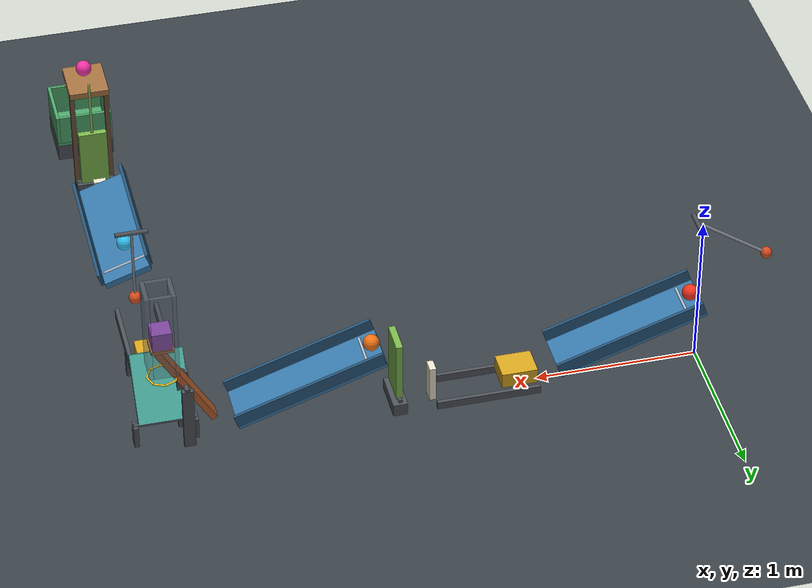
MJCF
<mujoco model="passive_chain">
  <compiler angle="degree" autolimits="true" inertiafromgeom="true"/>
  <option timestep="0.002" gravity="0 0 -9.81" integrator="implicitfast" cone="elliptic" iterations="100" tolerance="1e-10"/>
  <size nconmax="1000" njmax="4000"/>
  <visual>
    <global azimuth="135" elevation="-25"/>
    <map znear="0.01" zfar="50"/>
  </visual>

  <!-- All initial joint velocities are zero. -->
  <!-- Contact damping ratio 0.6901 approximates restitution 0.05. -->
  <!-- Sliding, torsional, and rolling friction are specified explicitly. -->

  <worldbody>
    <light name="main_light" pos="1 -1 5" dir="0 0 -1" diffuse="0.8 0.8 0.8"/>
    <light name="fill_light" pos="-2 -3 3" dir="1 1 -1" diffuse="0.4 0.4 0.4"/>
    <camera name="overview" pos="6 -7 5" xyaxes="0.8 0.6 0 -0.3 0.4 0.866"/>

    <geom name="floor" type="plane" size="20 20 0.1" rgba="0.22 0.25 0.28 1" friction="0.68 0.005 0.001" solref="0.01 0.6901" solimp="0.95 0.99 0.001"/>

    <!-- Pendulum1: initial rigid-body orientation is 55 degrees left. -->
    <body name="pendulum1" pos="0.04 0 1.03" euler="0 55 0">
      <joint name="pendulum1_hinge" type="hinge" axis="0 -1 0" damping="0.04" range="0 140"/>
      <geom name="pendulum1_rod" type="capsule" fromto="0 0 0 0 0 -0.515" size="0.009" mass="0.08" rgba="0.55 0.58 0.62 1" friction="0.68 0.005 0.001" solref="0.01 0.6901"/>
      <geom name="pendulum1_bob" type="sphere" pos="0 0 -0.55" size="0.035" mass="0.32" rgba="0.85 0.3 0.12 1" friction="0.68 0.005 0.001" solref="0.01 0.6901"/>
    </body>

    <body name="pendulum1_mount" pos="0.04 0 1.03">
      <geom name="pendulum1_mount_axle" type="cylinder" size="0.015 0.07" euler="90 0 0" rgba="0.3 0.32 0.35 1" contype="0" conaffinity="0"/>
    </body>

    <body name="ball1" pos="0.054099 0 0.493543">
      <freejoint name="ball1_free"/>
      <geom name="ball1_sphere" type="sphere" size="0.05" mass="0.20" rgba="0.95 0.2 0.12 1" friction="0.68 0.005 0.001" solref="0.01 0.6901" solimp="0.95 0.99 0.001"/>
    </body>

    <!-- Ramp surface endpoints: (0,0,0.459290) and (0.898243,0,0.15). -->
    <body name="ramp1" pos="0.442610 0 0.285734" euler="0 19 0">
      <geom name="ramp1_deck" type="box" size="0.475 0.15 0.02" rgba="0.22 0.48 0.68 1" friction="0.68 0.005 0.001" solref="0.01 0.6901"/>
      <geom name="ramp1_rail_left" type="box" pos="0 0.16 0.06" size="0.475 0.01 0.04" rgba="0.16 0.34 0.48 1" friction="0.68 0.005 0.001" solref="0.01 0.6901"/>
      <geom name="ramp1_rail_right" type="box" pos="0 -0.16 0.06" size="0.475 0.01 0.04" rgba="0.16 0.34 0.48 1" friction="0.68 0.005 0.001" solref="0.01 0.6901"/>
      <geom name="ramp1_release_lip" type="capsule" fromto="-0.370 -0.13 0.02 -0.370 0.13 0.02" size="0.008" rgba="0.7 0.75 0.8 1" friction="0.68 0.005 0.001" solref="0.01 0.6901"/>
    </body>

    <body name="cart1" pos="1.128243 0 0.10">
      <joint name="cart1_slide" type="slide" axis="1 0 0" damping="0.20" range="0 0.40" solreflimit="0.006 1"/>
      <geom name="cart1_chassis" type="box" size="0.11 0.09 0.05" mass="0.50" rgba="0.85 0.65 0.12 1" friction="0.68 0.005 0.001" solref="0.01 0.6901"/>
    </body>

    <body name="cart1_track" pos="1.328243 0 0.025">
      <geom name="cart1_track_left" type="box" pos="0 0.12 0" size="0.32 0.012 0.025" rgba="0.3 0.32 0.35 1" friction="0.68 0.005 0.001" solref="0.01 0.6901"/>
      <geom name="cart1_track_right" type="box" pos="0 -0.12 0" size="0.32 0.012 0.025" rgba="0.3 0.32 0.35 1" friction="0.68 0.005 0.001" solref="0.01 0.6901"/>
    </body>

    <body name="domino1" pos="1.655243 0 0.12">
      <freejoint name="domino1_free"/>
      <geom name="domino1_block" type="box" size="0.02 0.04 0.12" mass="0.25" rgba="0.92 0.9 0.8 1" friction="0.68 0.005 0.001" solref="0.01 0.6901"/>
    </body>

    <body name="flap1" pos="1.875243 0 0.105">
      <joint name="flap1_hinge" type="hinge" axis="0 1 0" damping="0.04" range="0 65" solreflimit="0.006 1"/>
      <geom name="flap1_panel" type="box" pos="0 0 0.20" size="0.02 0.10 0.20" mass="0.30" rgba="0.48 0.72 0.3 1" friction="0.68 0.005 0.001" solref="0.01 0.6901"/>
    </body>

    <body name="flap1_mount" pos="1.875243 0 0.105">
      <geom name="flap1_mount_axle" type="cylinder" size="0.012 0.13" euler="90 0 0" rgba="0.3 0.32 0.35 1" contype="0" conaffinity="0"/>
      <geom name="flap1_mount_base" type="box" pos="0 0 -0.065" size="0.045 0.13 0.04" rgba="0.3 0.32 0.35 1" friction="0.68 0.005 0.001" solref="0.01 0.6901"/>
    </body>

    <body name="ball2" pos="2.024099 0 0.493543">
      <freejoint name="ball2_free"/>
      <geom name="ball2_sphere" type="sphere" size="0.05" mass="0.20" rgba="0.95 0.45 0.08 1" friction="0.68 0.005 0.001" solref="0.01 0.6901"/>
    </body>

    <body name="ramp2" pos="2.412610 0 0.285734" euler="0 19 0">
      <geom name="ramp2_deck" type="box" size="0.475 0.15 0.02" rgba="0.22 0.48 0.68 1" friction="0.68 0.005 0.001" solref="0.01 0.6901"/>
      <geom name="ramp2_rail_left" type="box" pos="0 0.16 0.06" size="0.475 0.01 0.04" rgba="0.16 0.34 0.48 1" friction="0.68 0.005 0.001" solref="0.01 0.6901"/>
      <geom name="ramp2_rail_right" type="box" pos="0 -0.16 0.06" size="0.475 0.01 0.04" rgba="0.16 0.34 0.48 1" friction="0.68 0.005 0.001" solref="0.01 0.6901"/>
      <geom name="ramp2_release_lip" type="capsule" fromto="-0.370 -0.13 0.02 -0.370 0.13 0.02" size="0.008" rgba="0.7 0.75 0.8 1" friction="0.68 0.005 0.001" solref="0.01 0.6901"/>
    </body>

    <!-- Inclined starting beam raises the block station above the floor. -->
    <!-- The passive spring approximately balances its initial loaded torque. -->
    <body name="seesaw1" pos="3.147986 0 0.421458" euler="0 -60 0">
      <joint name="seesaw1_hinge" type="hinge" axis="0 -1 0" damping="0.04" stiffness="0.8" springref="35.93" range="0 40" solreflimit="0.006 1"/>
      <geom name="seesaw1_beam" type="box" size="0.325 0.05 0.02" mass="0.50" rgba="0.72 0.38 0.18 1" friction="0.68 0.005 0.001" solref="0.01 0.6901"/>
      <geom name="seesaw1_block_pad" type="box" pos="0.325 0 0.04" euler="0 60 0" size="0.07 0.065 0.01" mass="0.05" rgba="0.78 0.46 0.22 1" friction="0.68 0.005 0.001" solref="0.01 0.6901"/>
    </body>

    <body name="seesaw1_mount" pos="3.147986 0 0.421458">
      <geom name="seesaw1_mount_axle" type="cylinder" size="0.015 0.10" euler="90 0 0" rgba="0.3 0.32 0.35 1" contype="0" conaffinity="0"/>
      <geom name="seesaw1_mount_left" type="box" pos="0 0.09 -0.210729" size="0.035 0.015 0.210729" rgba="0.3 0.32 0.35 1" friction="0.68 0.005 0.001" solref="0.01 0.6901"/>
      <geom name="seesaw1_mount_right" type="box" pos="0 -0.09 -0.210729" size="0.035 0.015 0.210729" rgba="0.3 0.32 0.35 1" friction="0.68 0.005 0.001" solref="0.01 0.6901"/>
    </body>

    <body name="block1" pos="3.275845 0 0.792916">
      <freejoint name="block1_free"/>
      <geom name="block1_cube" type="box" size="0.06 0.06 0.06" mass="0.35" rgba="0.65 0.3 0.8 1" friction="0.68 0.005 0.001" solref="0.01 0.6901"/>
    </body>

    <!-- Passive vertical guide keeps the block aligned with the polygonal ring. -->
    <body name="block1_guide" pos="3.275845 0 0.85">
      <geom name="block1_guide_x_positive" type="box" pos="0.078 0 0" size="0.012 0.09 0.30" rgba="0.45 0.5 0.55 0.35" friction="0.68 0.005 0.001" solref="0.01 0.6901"/>
      <geom name="block1_guide_x_negative" type="box" pos="-0.078 0 0" size="0.012 0.09 0.30" rgba="0.45 0.5 0.55 0.35" friction="0.68 0.005 0.001" solref="0.01 0.6901"/>
      <geom name="block1_guide_y_positive" type="box" pos="0 0.078 0" size="0.066 0.012 0.30" rgba="0.45 0.5 0.55 0.35" friction="0.68 0.005 0.001" solref="0.01 0.6901"/>
      <geom name="block1_guide_y_negative" type="box" pos="0 -0.078 0" size="0.066 0.012 0.30" rgba="0.45 0.5 0.55 0.35" friction="0.68 0.005 0.001" solref="0.01 0.6901"/>
    </body>

    <!-- Octagonal ring: minimum clear diameter is 0.16 m. -->
    <body name="ring1" pos="3.275845 0 0.492916">
      <geom name="ring1_segment_1" type="capsule" fromto="0.093086 0 0 0.065823 0.065823 0" size="0.006" rgba="0.95 0.8 0.15 1" friction="0.68 0.005 0.001" solref="0.01 0.6901"/>
      <geom name="ring1_segment_2" type="capsule" fromto="0.065823 0.065823 0 0 0.093086 0" size="0.006" rgba="0.95 0.8 0.15 1" friction="0.68 0.005 0.001" solref="0.01 0.6901"/>
      <geom name="ring1_segment_3" type="capsule" fromto="0 0.093086 0 -0.065823 0.065823 0" size="0.006" rgba="0.95 0.8 0.15 1" friction="0.68 0.005 0.001" solref="0.01 0.6901"/>
      <geom name="ring1_segment_4" type="capsule" fromto="-0.065823 0.065823 0 -0.093086 0 0" size="0.006" rgba="0.95 0.8 0.15 1" friction="0.68 0.005 0.001" solref="0.01 0.6901"/>
      <geom name="ring1_segment_5" type="capsule" fromto="-0.093086 0 0 -0.065823 -0.065823 0" size="0.006" rgba="0.95 0.8 0.15 1" friction="0.68 0.005 0.001" solref="0.01 0.6901"/>
      <geom name="ring1_segment_6" type="capsule" fromto="-0.065823 -0.065823 0 0 -0.093086 0" size="0.006" rgba="0.95 0.8 0.15 1" friction="0.68 0.005 0.001" solref="0.01 0.6901"/>
      <geom name="ring1_segment_7" type="capsule" fromto="0 -0.093086 0 0.065823 -0.065823 0" size="0.006" rgba="0.95 0.8 0.15 1" friction="0.68 0.005 0.001" solref="0.01 0.6901"/>
      <geom name="ring1_segment_8" type="capsule" fromto="0.065823 -0.065823 0 0.093086 0 0" size="0.006" rgba="0.95 0.8 0.15 1" friction="0.68 0.005 0.001" solref="0.01 0.6901"/>
    </body>

    <!-- Door redirects the chain into the negative-y lane. -->
    <!-- Its passive spring approximately balances initial gravitational torque. -->
    <body name="door1" pos="3.275845 0.005635 0.14" euler="35 0 0">
      <joint name="door1_hinge" type="hinge" axis="1 0 0" damping="0.04" stiffness="0.8" springref="-38.084" range="0 70" solreflimit="0.006 1"/>
      <geom name="door1_panel" type="box" pos="0 0 0.21" size="0.16 0.02 0.21" mass="0.45" rgba="0.3 0.7 0.65 1" friction="0.68 0.005 0.001" solref="0.01 0.6901"/>
    </body>

    <body name="door1_mount" pos="3.275845 0.005635 0.14">
      <geom name="door1_mount_axle" type="cylinder" size="0.012 0.19" euler="0 90 0" rgba="0.3 0.32 0.35 1" contype="0" conaffinity="0"/>
      <geom name="door1_mount_left" type="box" pos="-0.18 0 -0.07" size="0.015 0.035 0.07" rgba="0.3 0.32 0.35 1" friction="0.68 0.005 0.001" solref="0.01 0.6901"/>
      <geom name="door1_mount_right" type="box" pos="0.18 0 -0.07" size="0.015 0.035 0.07" rgba="0.3 0.32 0.35 1" friction="0.68 0.005 0.001" solref="0.01 0.6901"/>
    </body>

    <body name="cart2" pos="3.275845 -0.37435 0.32">
      <joint name="cart2_slide" type="slide" axis="0 -1 0" damping="0.20" range="0 0.42" solreflimit="0.006 1"/>
      <geom name="cart2_chassis" type="box" size="0.09 0.11 0.05" mass="0.50" rgba="0.85 0.65 0.12 1" friction="0.68 0.005 0.001" solref="0.01 0.6901"/>
    </body>

    <body name="cart2_track" pos="3.275845 -0.58435 0.235">
      <geom name="cart2_track_left" type="box" pos="-0.12 0 0" size="0.012 0.34 0.035" rgba="0.3 0.32 0.35 1" friction="0.68 0.005 0.001" solref="0.01 0.6901"/>
      <geom name="cart2_track_right" type="box" pos="0.12 0 0" size="0.012 0.34 0.035" rgba="0.3 0.32 0.35 1" friction="0.68 0.005 0.001" solref="0.01 0.6901"/>
      <geom name="cart2_track_leg_left" type="box" pos="-0.12 0 -0.10" size="0.012 0.025 0.10" rgba="0.3 0.32 0.35 1" friction="0.68 0.005 0.001" solref="0.01 0.6901"/>
      <geom name="cart2_track_leg_right" type="box" pos="0.12 0 -0.10" size="0.012 0.025 0.10" rgba="0.3 0.32 0.35 1" friction="0.68 0.005 0.001" solref="0.01 0.6901"/>
    </body>

    <body name="pendulum2" pos="3.275845 -0.94235 0.82">
      <joint name="pendulum2_hinge" type="hinge" axis="-1 0 0" damping="0.04" range="0 38" solreflimit="0.006 1"/>
      <geom name="pendulum2_rod" type="capsule" fromto="0 0 0 0 0 -0.465" size="0.008" mass="0.07" rgba="0.55 0.58 0.62 1" friction="0.68 0.005 0.001" solref="0.01 0.6901"/>
      <geom name="pendulum2_bob" type="sphere" pos="0 0 -0.50" size="0.04" mass="0.28" rgba="0.85 0.3 0.12 1" friction="0.68 0.005 0.001" solref="0.01 0.6901"/>
    </body>

    <body name="pendulum2_mount" pos="3.275845 -0.94235 0.82">
      <geom name="pendulum2_mount_axle" type="cylinder" size="0.014 0.10" euler="0 90 0" rgba="0.3 0.32 0.35 1" contype="0" conaffinity="0"/>
    </body>

    <body name="ball3" pos="3.275845 -1.269999 0.493543">
      <freejoint name="ball3_free"/>
      <geom name="ball3_sphere" type="sphere" size="0.05" mass="0.20" rgba="0.2 0.75 0.95 1" friction="0.68 0.005 0.001" solref="0.01 0.6901"/>
    </body>

    <body name="ramp3" pos="3.275845 -1.658510 0.285734" euler="0 19 -90">
      <geom name="ramp3_deck" type="box" size="0.475 0.15 0.02" rgba="0.22 0.48 0.68 1" friction="0.68 0.005 0.001" solref="0.01 0.6901"/>
      <geom name="ramp3_rail_left" type="box" pos="0 0.16 0.06" size="0.475 0.01 0.04" rgba="0.16 0.34 0.48 1" friction="0.68 0.005 0.001" solref="0.01 0.6901"/>
      <geom name="ramp3_rail_right" type="box" pos="0 -0.16 0.06" size="0.475 0.01 0.04" rgba="0.16 0.34 0.48 1" friction="0.68 0.005 0.001" solref="0.01 0.6901"/>
      <geom name="ramp3_release_lip" type="capsule" fromto="-0.370 -0.13 0.02 -0.370 0.13 0.02" size="0.008" rgba="0.7 0.75 0.8 1" friction="0.68 0.005 0.001" solref="0.01 0.6901"/>
    </body>

    <body name="domino2" pos="3.275845 -2.234143 0.12">
      <freejoint name="domino2_free"/>
      <geom name="domino2_block" type="box" size="0.04 0.02 0.12" mass="0.25" rgba="0.92 0.9 0.8 1" friction="0.68 0.005 0.001" solref="0.01 0.6901"/>
    </body>

    <!-- Panel dimensions are 0.38 by 0.18 by 0.04 m. -->
    <!-- A lightweight rigid striker reaches the elevated shelf. -->
    <body name="flap2" pos="3.275845 -2.454143 0.08">
      <joint name="flap2_hinge" type="hinge" axis="1 0 0" damping="0.04" range="0 60" solreflimit="0.006 1"/>
      <geom name="flap2_panel" type="box" pos="0 0 0.19" size="0.09 0.02 0.19" mass="0.262" rgba="0.48 0.72 0.3 1" friction="0.68 0.005 0.001" solref="0.01 0.6901"/>
      <geom name="flap2_striker" type="capsule" fromto="0 0 0.38 0 0 0.76" size="0.008" mass="0.018" rgba="0.62 0.76 0.4 1" friction="0.68 0.005 0.001" solref="0.01 0.6901"/>
    </body>

    <body name="flap2_mount" pos="3.275845 -2.454143 0.08">
      <geom name="flap2_mount_axle" type="cylinder" size="0.012 0.12" euler="0 90 0" rgba="0.3 0.32 0.35 1" contype="0" conaffinity="0"/>
      <geom name="flap2_mount_base" type="box" pos="0 0 -0.04" size="0.12 0.04 0.04" rgba="0.3 0.32 0.35 1" friction="0.68 0.005 0.001" solref="0.01 0.6901"/>
    </body>

    <body name="ball4" pos="3.275845 -2.65 0.83">
      <freejoint name="ball4_free"/>
      <geom name="ball4_sphere" type="sphere" size="0.05" mass="0.20" rgba="0.95 0.2 0.65 1" friction="0.68 0.005 0.001" solref="0.01 0.6901"/>
    </body>

    <body name="shelf1" pos="3.275845 -2.60 0.76">
      <geom name="shelf1_deck" type="box" size="0.125 0.15 0.02" rgba="0.65 0.45 0.25 1" friction="0.68 0.005 0.001" solref="0.01 0.6901"/>
      <geom name="shelf1_left_leg" type="box" pos="-0.11 0.11 -0.37" size="0.015 0.015 0.37" rgba="0.42 0.32 0.23 1" friction="0.68 0.005 0.001" solref="0.01 0.6901"/>
      <geom name="shelf1_right_leg" type="box" pos="0.11 0.11 -0.37" size="0.015 0.015 0.37" rgba="0.42 0.32 0.23 1" friction="0.68 0.005 0.001" solref="0.01 0.6901"/>
    </body>

    <body name="ring2" pos="3.275845 -2.90 0.53">
      <geom name="ring2_segment_1" type="capsule" fromto="0.093086 0 0 0.065823 0.065823 0" size="0.006" rgba="0.95 0.8 0.15 1" friction="0.68 0.005 0.001" solref="0.01 0.6901"/>
      <geom name="ring2_segment_2" type="capsule" fromto="0.065823 0.065823 0 0 0.093086 0" size="0.006" rgba="0.95 0.8 0.15 1" friction="0.68 0.005 0.001" solref="0.01 0.6901"/>
      <geom name="ring2_segment_3" type="capsule" fromto="0 0.093086 0 -0.065823 0.065823 0" size="0.006" rgba="0.95 0.8 0.15 1" friction="0.68 0.005 0.001" solref="0.01 0.6901"/>
      <geom name="ring2_segment_4" type="capsule" fromto="-0.065823 0.065823 0 -0.093086 0 0" size="0.006" rgba="0.95 0.8 0.15 1" friction="0.68 0.005 0.001" solref="0.01 0.6901"/>
      <geom name="ring2_segment_5" type="capsule" fromto="-0.093086 0 0 -0.065823 -0.065823 0" size="0.006" rgba="0.95 0.8 0.15 1" friction="0.68 0.005 0.001" solref="0.01 0.6901"/>
      <geom name="ring2_segment_6" type="capsule" fromto="-0.065823 -0.065823 0 0 -0.093086 0" size="0.006" rgba="0.95 0.8 0.15 1" friction="0.68 0.005 0.001" solref="0.01 0.6901"/>
      <geom name="ring2_segment_7" type="capsule" fromto="0 -0.093086 0 0.065823 -0.065823 0" size="0.006" rgba="0.95 0.8 0.15 1" friction="0.68 0.005 0.001" solref="0.01 0.6901"/>
      <geom name="ring2_segment_8" type="capsule" fromto="0.065823 -0.065823 0 0.093086 0 0" size="0.006" rgba="0.95 0.8 0.15 1" friction="0.68 0.005 0.001" solref="0.01 0.6901"/>
    </body>

    <!-- Inner footprint 0.32 by 0.32; walls 0.20 high and 0.02 thick. -->
    <!-- Base top is z=0.13, giving resting ball center z=0.18. -->
    <body name="box1" pos="3.275845 -3.00 0">
      <geom name="box1_pedestal" type="box" pos="0 0 0.055" size="0.18 0.18 0.055" rgba="0.3 0.32 0.35 1" friction="0.68 0.005 0.001" solref="0.01 0.6901"/>
      <geom name="box1_bottom" type="box" pos="0 0 0.12" size="0.18 0.18 0.01" rgba="0.3 0.65 0.42 1" friction="0.68 0.005 0.001" solref="0.01 0.6901"/>
      <geom name="box1_wall_x_positive" type="box" pos="0.17 0 0.23" size="0.01 0.18 0.10" rgba="0.3 0.65 0.42 1" friction="0.68 0.005 0.001" solref="0.01 0.6901"/>
      <geom name="box1_wall_x_negative" type="box" pos="-0.17 0 0.23" size="0.01 0.18 0.10" rgba="0.3 0.65 0.42 1" friction="0.68 0.005 0.001" solref="0.01 0.6901"/>
      <geom name="box1_wall_y_positive" type="box" pos="0 0.17 0.23" size="0.16 0.01 0.10" rgba="0.3 0.65 0.42 1" friction="0.68 0.005 0.001" solref="0.01 0.6901"/>
      <geom name="box1_wall_y_negative" type="box" pos="0 -0.17 0.23" size="0.16 0.01 0.10" rgba="0.3 0.65 0.42 1" friction="0.68 0.005 0.001" solref="0.01 0.6901"/>
    </body>
  </worldbody>

  <keyframe>
    <key name="start"/>
  </keyframe>
</mujoco>
